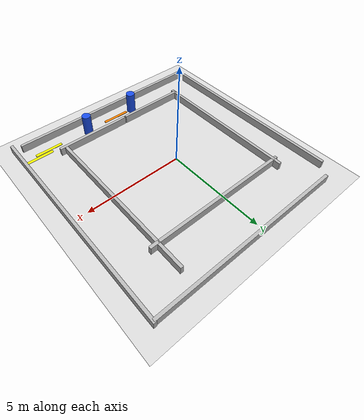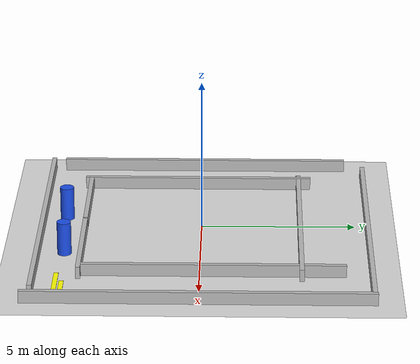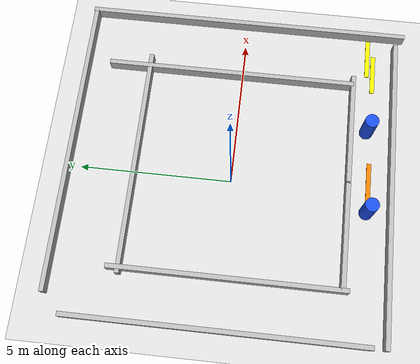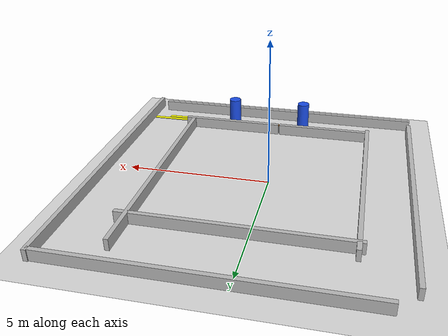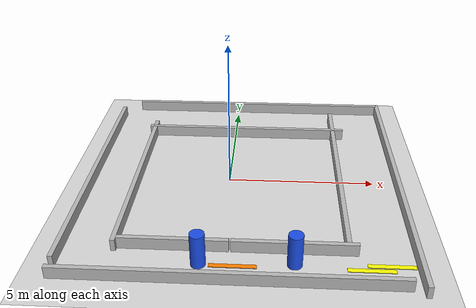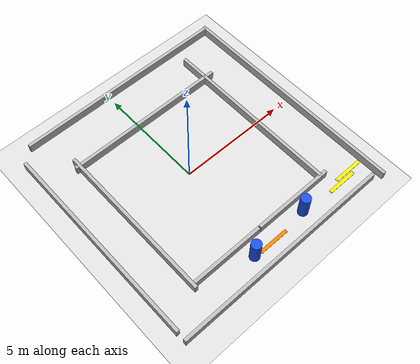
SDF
<?xml version="1.0" ?>
<sdf version="1.9">
  <world name="adc_track_v1">

    <plugin filename="gz-sim-physics-system" name="gz::sim::systems::Physics"/>
    <plugin filename="gz-sim-user-commands-system" name="gz::sim::systems::UserCommands"/>
    <plugin filename="gz-sim-scene-broadcaster-system" name="gz::sim::systems::SceneBroadcaster"/>
    <plugin filename="gz-sim-sensors-system" name="gz::sim::systems::Sensors">
      <render_engine>ogre</render_engine>
    </plugin>

    <light name="sun" type="directional">
      <cast_shadows>true</cast_shadows>
      <pose>0 0 10 0 0 0</pose>
      <diffuse>0.8 0.8 0.8 1</diffuse>
      <specular>0.2 0.2 0.2 1</specular>
      <attenuation>
        <range>1000</range>
        <constant>0.9</constant>
        <linear>0.01</linear>
        <quadratic>0.001</quadratic>
      </attenuation>
      <direction>-0.5 0.1 -0.9</direction>
    </light>

    <model name="ground_plane">
      <static>true</static>
      <link name="link">
        <collision name="collision">
          <geometry>
            <plane>
              <normal>0 0 1</normal>
              <size>30 30</size>
            </plane>
          </geometry>
        </collision>
        <visual name="visual">
          <geometry>
            <plane>
              <normal>0 0 1</normal>
              <size>30 30</size>
            </plane>
          </geometry>
          <material>
            <ambient>0.85 0.85 0.85 1</ambient>
            <diffuse>0.85 0.85 0.85 1</diffuse>
          </material>
        </visual>
      </link>
    </model>

    <!-- OUTER BOUNDARY -->
    <model name="outer_right">
      <static>true</static>
      <pose>5.8 0.0 0.2 0 0 0</pose>
      <link name="link">
        <collision name="collision"><geometry><box><size>0.15 11.0 0.4</size></box></geometry></collision>
        <visual name="visual"><geometry><box><size>0.15 11.0 0.4</size></box></geometry></visual>
      </link>
    </model>

    <model name="outer_top">
      <static>true</static>
      <pose>0.8 5.4 0.2 0 0 0</pose>
      <link name="link">
        <collision name="collision"><geometry><box><size>10.0 0.15 0.4</size></box></geometry></collision>
        <visual name="visual"><geometry><box><size>10.0 0.15 0.4</size></box></geometry></visual>
      </link>
    </model>

    <model name="outer_left">
      <static>true</static>
      <pose>-4.8 0.0 0.2 0 0 0</pose>
      <link name="link">
        <collision name="collision"><geometry><box><size>0.15 9.6 0.4</size></box></geometry></collision>
        <visual name="visual"><geometry><box><size>0.15 9.6 0.4</size></box></geometry></visual>
      </link>
    </model>

    <model name="outer_bottom">
      <static>true</static>
      <pose>0.3 -5.2 0.2 0 0 0</pose>
      <link name="link">
        <collision name="collision"><geometry><box><size>10.3 0.15 0.4</size></box></geometry></collision>
        <visual name="visual"><geometry><box><size>10.3 0.15 0.4</size></box></geometry></visual>
      </link>
    </model>

    <!-- INNER BOUNDARY -->
    <model name="inner_right">
      <static>true</static>
      <pose>3.8 0.4 0.2 0 0 0</pose>
      <link name="link">
        <collision name="collision"><geometry><box><size>0.15 8.4 0.4</size></box></geometry></collision>
        <visual name="visual"><geometry><box><size>0.15 8.4 0.4</size></box></geometry></visual>
      </link>
    </model>

    <model name="inner_top">
      <static>true</static>
      <pose>0.4 3.2 0.2 0 0 0</pose>
      <link name="link">
        <collision name="collision"><geometry><box><size>7.6 0.15 0.4</size></box></geometry></collision>
        <visual name="visual"><geometry><box><size>7.6 0.15 0.4</size></box></geometry></visual>
      </link>
    </model>

    <model name="inner_left">
      <static>true</static>
      <pose>-3.2 -0.2 0.2 0 0 0</pose>
      <link name="link">
        <collision name="collision"><geometry><box><size>0.15 7.6 0.4</size></box></geometry></collision>
        <visual name="visual"><geometry><box><size>0.15 7.6 0.4</size></box></geometry></visual>
      </link>
    </model>

    <model name="inner_bottom_left">
      <static>true</static>
      <pose>-1.5 -3.8 0.2 0 0 0</pose>
      <link name="link">
        <collision name="collision"><geometry><box><size>3.5 0.15 0.4</size></box></geometry></collision>
        <visual name="visual"><geometry><box><size>3.5 0.15 0.4</size></box></geometry></visual>
      </link>
    </model>

    <model name="inner_bottom_right">
      <static>true</static>
      <pose>2.2 -3.8 0.2 0 0 0</pose>
      <link name="link">
        <collision name="collision"><geometry><box><size>3.8 0.15 0.4</size></box></geometry></collision>
        <visual name="visual"><geometry><box><size>3.8 0.15 0.4</size></box></geometry></visual>
      </link>
    </model>

    <!-- START / STOP / FINISH LINES -->
    <model name="start_line">
      <static>true</static>
      <pose>5.0 -4.3 0.01 0 0 0</pose>
      <link name="link">
        <visual name="visual">
          <geometry><box><size>1.4 0.15 0.02</size></box></geometry>
          <material><ambient>1 1 0 1</ambient><diffuse>1 1 0 1</diffuse></material>
        </visual>
      </link>
    </model>

    <model name="stop_line">
      <static>true</static>
      <pose>0.4 -4.5 0.01 0 0 0</pose>
      <link name="link">
        <visual name="visual">
          <geometry><box><size>1.4 0.15 0.02</size></box></geometry>
          <material><ambient>1 0.5 0 1</ambient><diffuse>1 0.5 0 1</diffuse></material>
        </visual>
      </link>
    </model>

    <model name="finish_line">
      <static>true</static>
      <pose>4.4 -4.5 0.01 0 0 0</pose>
      <link name="link">
        <visual name="visual">
          <geometry><box><size>1.4 0.15 0.02</size></box></geometry>
          <material><ambient>1 1 0 1</ambient><diffuse>1 1 0 1</diffuse></material>
        </visual>
      </link>
    </model>

    <!-- STATIC OBSTACLE AVOIDANCE ZONE -->
    <model name="adc_obstacle_1">
      <static>true</static>
      <pose>-0.6 -4.45 0.55 0 0 0</pose>
      <link name="link">
        <collision name="collision">
          <geometry><cylinder><radius>0.225</radius><length>1.10</length></cylinder></geometry>
        </collision>
        <visual name="visual">
          <geometry><cylinder><radius>0.225</radius><length>1.10</length></cylinder></geometry>
          <material><ambient>0.1 0.3 0.9 1</ambient><diffuse>0.1 0.3 0.9 1</diffuse></material>
        </visual>
      </link>
    </model>

    <model name="adc_obstacle_3">
      <static>true</static>
      <pose>2.2 -4.35 0.55 0 0 0</pose>
      <link name="link">
        <collision name="collision">
          <geometry><cylinder><radius>0.225</radius><length>1.10</length></cylinder></geometry>
        </collision>
        <visual name="visual">
          <geometry><cylinder><radius>0.225</radius><length>1.10</length></cylinder></geometry>
          <material><ambient>0.1 0.3 0.9 1</ambient><diffuse>0.1 0.3 0.9 1</diffuse></material>
        </visual>
      </link>
    </model>

  </world>
</sdf>
